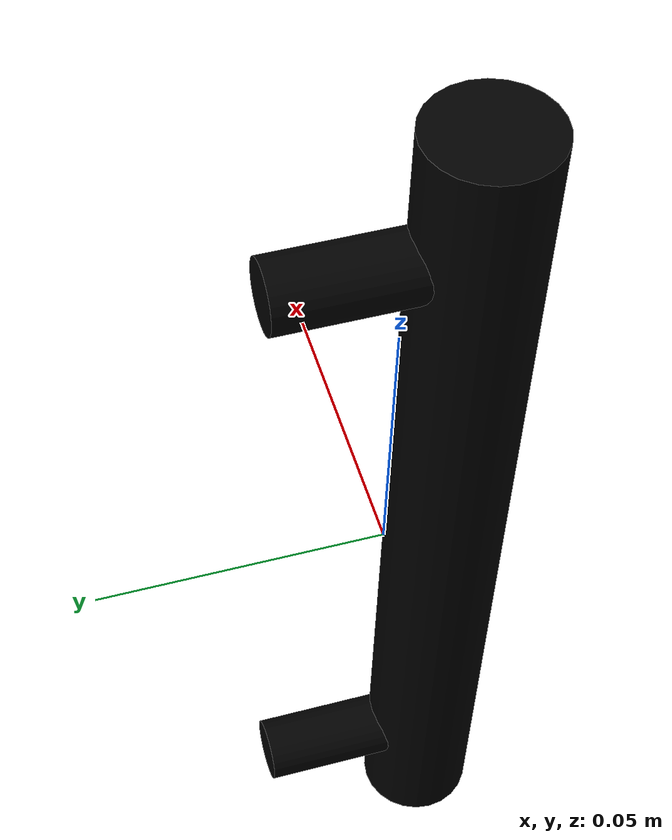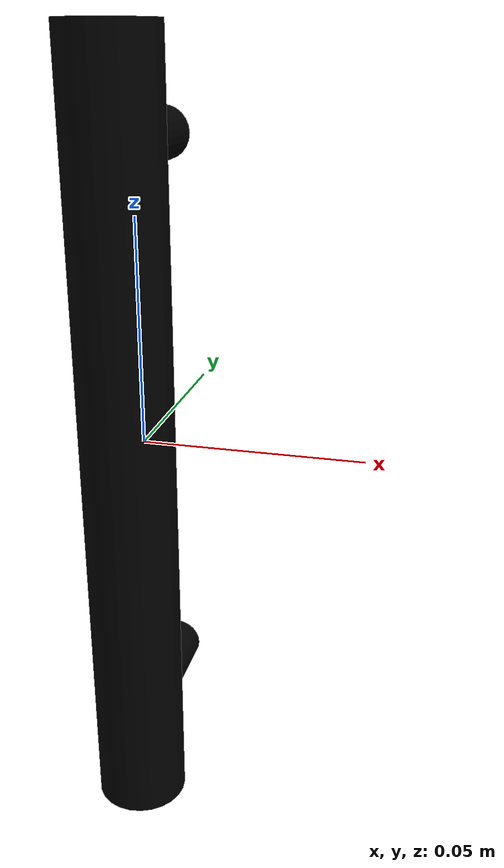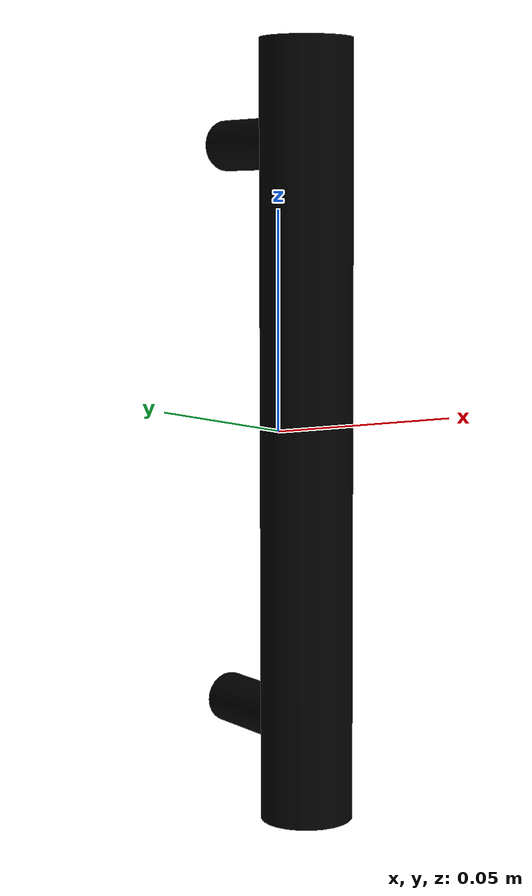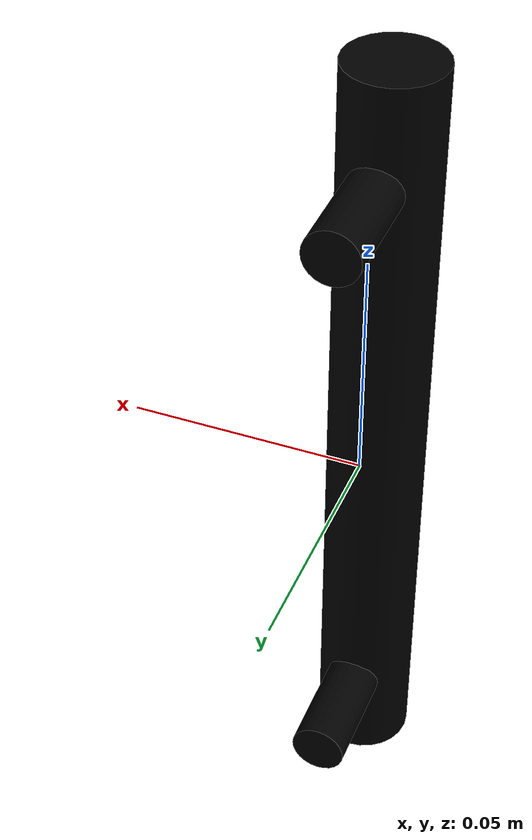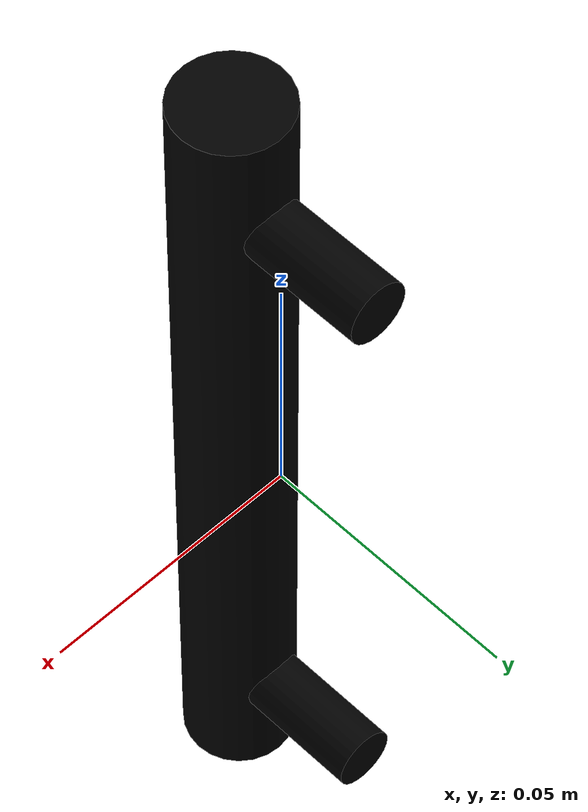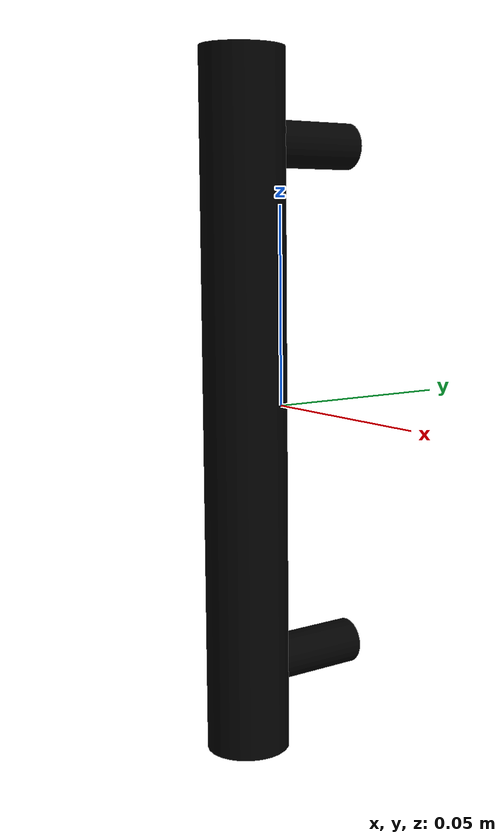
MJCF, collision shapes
<?xml version="1.0" ?>
<mujoco model="model">
    <compiler angle="radian"/>
    <asset>
        <mesh file="visuals/CabinetHandle006.obj" name="mesh"/>
        <texture file="visuals/T_BC001.png" name="tex" type="2d"/>
        <material name="mat" rgba="1 1 1 1.0" texture="tex" shininess="0.4472135901451111" specular="0.4"/>
    </asset>
    <default>
        <default class="visual">
            <geom conaffinity="0" contype="0" group="1" type="mesh"/>
        </default>
        <default class="collision">
            <geom group="0" rgba="0 0 0 0"/>
        </default>
        <default class="spawn">
            <geom group="0" rgba="0 0 0 0" contype="0" conaffinity="0"/>
            <site group="0" rgba="0 0 0 0"/>
        </default>
    </default>
    <worldbody>
        <body>
            <body name="object">
                <geom mesh="mesh" type="mesh" solimp="0.998 0.998 0.001" solref="0.001 1" density="100" friction="0.95 0.3 0.1" class="visual" material="mat"/>
                <geom class="collision" type="cylinder" pos="0.0 -0.010914381593465805 0.0" size="0.010422824881970882 0.08738472312688828" quat="1.0 0.0 0.0 0.0"/>
                <geom class="collision" type="cylinder" pos="0.0 0.006050306838005781 0.06487763673067093" size="0.005828428082168102 0.015019014477729797" quat="0.7071067094802856 0.7071068286895752 0.0 0.0" name="handle_connector"/>
                <geom class="collision" type="cylinder" pos="0.0 0.006050306838005781 -0.06581848114728928" size="0.005828428082168102 0.015019014477729797" quat="0.7071067094802856 0.7071068286895752 0.0 0.0"/>
            </body>
        </body>
    </worldbody>
    <actuator/>
</mujoco>
